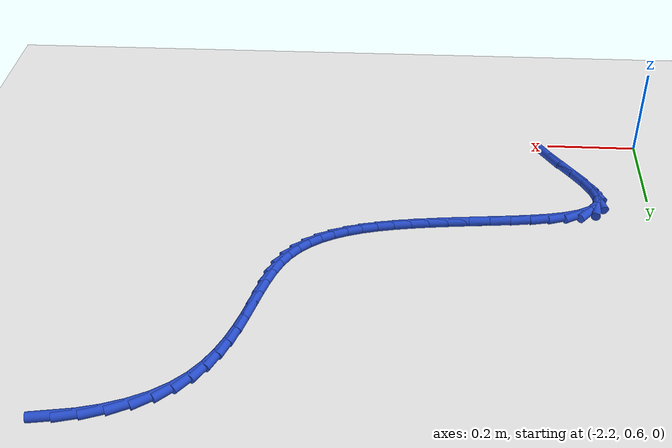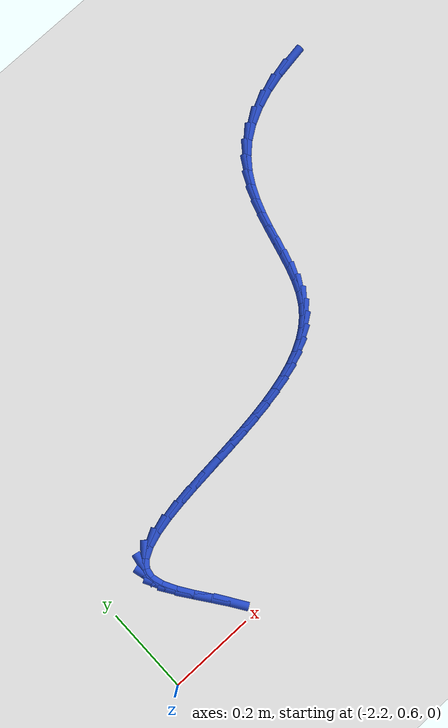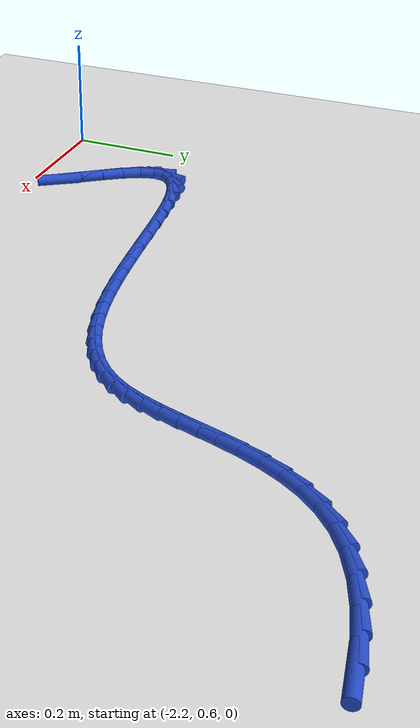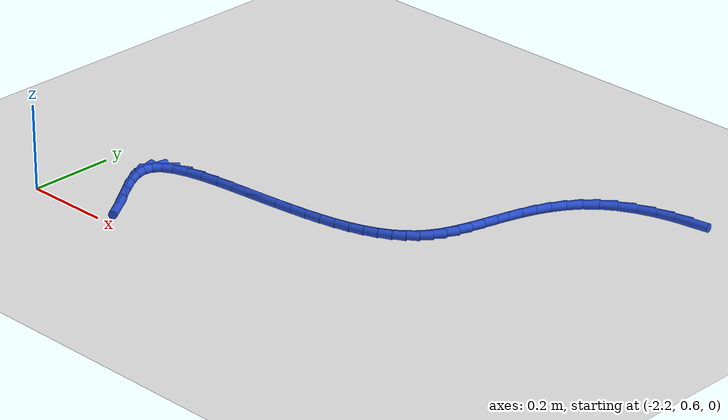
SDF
<sdf version="1.6">
 <world name="default">
  <model name="ground_plane">
   <static>1</static>
   <link name="link">
    <collision name="collision">
     <geometry><plane><normal>0 0 1</normal><size>100 100</size></plane></geometry>
     <surface><friction><ode><mu>100</mu><mu2>50</mu2></ode></friction></surface>
    </collision>
    <visual name="visual">
     <cast_shadows>0</cast_shadows>
     <geometry><plane><normal>0 0 1</normal><size>100 100</size></plane></geometry>
     <material>
      <script><uri>file://media/materials/scripts/gazebo.material</uri><name>Gazebo/WhiteGlow</name></script>
     </material>
    </visual>
   </link>
  </model>
  <model name="line">
   <link name="link_64">
    <pose>-1.0699852493082962 1.4579620796810788 0.01 0 1.57 0.15446744971172885</pose>
    <collision name="collision">
     <geometry><cylinder><radius>0.01</radius><length>0.08</length></cylinder></geometry>
    </collision>
    <visual name="visual">
     <material>
      <script><name>Gazebo/Blue</name><uri>file://media/materials/scripts/gazebo.material</uri></script>
     </material>
     <geometry><cylinder><radius>0.01</radius><length>0.08</length></cylinder></geometry>
    </visual>
   </link>
   <link name="link_65">
    <pose>-1.113085390569889 1.4512510501951963 0.01 0 1.57 0.2489012379649305</pose>
    <collision name="collision">
     <geometry><cylinder><radius>0.01</radius><length>0.08</length></cylinder></geometry>
    </collision>
    <visual name="visual">
     <material>
      <script><name>Gazebo/Blue</name><uri>file://media/materials/scripts/gazebo.material</uri></script>
     </material>
     <geometry><cylinder><radius>0.01</radius><length>0.08</length></cylinder></geometry>
    </visual>
   </link>
   <link name="link_66">
    <pose>-1.1562306329122753 1.4402847442054467 0.01 0 1.57 0.3477899901577562</pose>
    <collision name="collision">
     <geometry><cylinder><radius>0.01</radius><length>0.08</length></cylinder></geometry>
    </collision>
    <visual name="visual">
     <material>
      <script><name>Gazebo/Blue</name><uri>file://media/materials/scripts/gazebo.material</uri></script>
     </material>
     <geometry><cylinder><radius>0.01</radius><length>0.08</length></cylinder></geometry>
    </visual>
   </link>
   <link name="link_67">
    <pose>-1.1975889692672745 1.42529127091928 0.01 0 1.57 0.46201020415396077</pose>
    <collision name="collision">
     <geometry><cylinder><radius>0.01</radius><length>0.08</length></cylinder></geometry>
    </collision>
    <visual name="visual">
     <material>
      <script><name>Gazebo/Blue</name><uri>file://media/materials/scripts/gazebo.material</uri></script>
     </material>
     <geometry><cylinder><radius>0.01</radius><length>0.08</length></cylinder></geometry>
    </visual>
   </link>
   <link name="link_68">
    <pose>-1.2353283925667047 1.4064987395441475 0.01 0 1.57 0.6037212552809045</pose>
    <collision name="collision">
     <geometry><cylinder><radius>0.01</radius><length>0.08</length></cylinder></geometry>
    </collision>
    <visual name="visual">
     <material>
      <script><name>Gazebo/Blue</name><uri>file://media/materials/scripts/gazebo.material</uri></script>
     </material>
     <geometry><cylinder><radius>0.01</radius><length>0.08</length></cylinder></geometry>
    </visual>
   </link>
   <link name="link_69">
    <pose>-1.2677364559943995 1.3841496937025077 0.01 0 1.57 0.7597947664931077</pose>
    <collision name="collision">
     <geometry><cylinder><radius>0.01</radius><length>0.08</length></cylinder></geometry>
    </collision>
    <visual name="visual">
     <material>
      <script><name>Gazebo/Blue</name><uri>file://media/materials/scripts/gazebo.material</uri></script>
     </material>
     <geometry><cylinder><radius>0.01</radius><length>0.08</length></cylinder></geometry>
    </visual>
   </link>
   <link name="link_70">
    <pose>-1.294562650023387 1.3586631755536782 0.01 0 1.57 0.9069400863230939</pose>
    <collision name="collision">
     <geometry><cylinder><radius>0.01</radius><length>0.08</length></cylinder></geometry>
    </collision>
    <visual name="visual">
     <material>
      <script><name>Gazebo/Blue</name><uri>file://media/materials/scripts/gazebo.material</uri></script>
     </material>
     <geometry><cylinder><radius>0.01</radius><length>0.08</length></cylinder></geometry>
    </visual>
   </link>
   <link name="link_71">
    <pose>-1.31653502925602 1.3305763685331644 0.01 0 1.57 1.0358592865323129</pose>
    <collision name="collision">
     <geometry><cylinder><radius>0.01</radius><length>0.08</length></cylinder></geometry>
    </collision>
    <visual name="visual">
     <material>
      <script><name>Gazebo/Blue</name><uri>file://media/materials/scripts/gazebo.material</uri></script>
     </material>
     <geometry><cylinder><radius>0.01</radius><length>0.08</length></cylinder></geometry>
    </visual>
   </link>
   <link name="link_72">
    <pose>-1.3343996234628712 1.3004286262043643 0.01 0 1.57 1.1413542212084051</pose>
    <collision name="collision">
     <geometry><cylinder><radius>0.01</radius><length>0.08</length></cylinder></geometry>
    </collision>
    <visual name="visual">
     <material>
      <script><name>Gazebo/Blue</name><uri>file://media/materials/scripts/gazebo.material</uri></script>
     </material>
     <geometry><cylinder><radius>0.01</radius><length>0.08</length></cylinder></geometry>
    </visual>
   </link>
   <link name="link_73">
    <pose>-1.348902462414513 1.2687593021306762 0.01 0 1.57 1.2216515014644793</pose>
    <collision name="collision">
     <geometry><cylinder><radius>0.01</radius><length>0.08</length></cylinder></geometry>
    </collision>
    <visual name="visual">
     <material>
      <script><name>Gazebo/Blue</name><uri>file://media/materials/scripts/gazebo.material</uri></script>
     </material>
     <geometry><cylinder><radius>0.01</radius><length>0.08</length></cylinder></geometry>
    </visual>
   </link>
   <link name="link_74">
    <pose>-1.3607895758815178 1.2361077498754989 0.01 0 1.57 1.2768716550753672</pose>
    <collision name="collision">
     <geometry><cylinder><radius>0.01</radius><length>0.08</length></cylinder></geometry>
    </collision>
    <visual name="visual">
     <material>
      <script><name>Gazebo/Blue</name><uri>file://media/materials/scripts/gazebo.material</uri></script>
     </material>
     <geometry><cylinder><radius>0.01</radius><length>0.08</length></cylinder></geometry>
    </visual>
   </link>
   <link name="link_75">
    <pose>-1.3708069936344573 1.2030133230022297 0.01 0 1.57 1.307527838596577</pose>
    <collision name="collision">
     <geometry><cylinder><radius>0.01</radius><length>0.08</length></cylinder></geometry>
    </collision>
    <visual name="visual">
     <material>
      <script><name>Gazebo/Blue</name><uri>file://media/materials/scripts/gazebo.material</uri></script>
     </material>
     <geometry><cylinder><radius>0.01</radius><length>0.08</length></cylinder></geometry>
    </visual>
   </link>
   <link name="link_76">
    <pose>-1.3797007454439048 1.1700153750742688 0.01 0 1.57 1.3134792738217023</pose>
    <collision name="collision">
     <geometry><cylinder><radius>0.01</radius><length>0.08</length></cylinder></geometry>
    </collision>
    <visual name="visual">
     <material>
      <script><name>Gazebo/Blue</name><uri>file://media/materials/scripts/gazebo.material</uri></script>
     </material>
     <geometry><cylinder><radius>0.01</radius><length>0.08</length></cylinder></geometry>
    </visual>
   </link>
   <link name="link_77">
    <pose>-1.3882168610804313 1.1376532596550133 0.01 0 1.57 1.2932688464191024</pose>
    <collision name="collision">
     <geometry><cylinder><radius>0.01</radius><length>0.08</length></cylinder></geometry>
    </collision>
    <visual name="visual">
     <material>
      <script><name>Gazebo/Blue</name><uri>file://media/materials/scripts/gazebo.material</uri></script>
     </material>
     <geometry><cylinder><radius>0.01</radius><length>0.08</length></cylinder></geometry>
    </visual>
   </link>
   <link name="link_78">
    <pose>-1.3971013703146107 1.1064663303078615 0.01 0 1.57 1.2437173441911602</pose>
    <collision name="collision">
     <geometry><cylinder><radius>0.01</radius><length>0.08</length></cylinder></geometry>
    </collision>
    <visual name="visual">
     <material>
      <script><name>Gazebo/Blue</name><uri>file://media/materials/scripts/gazebo.material</uri></script>
     </material>
     <geometry><cylinder><radius>0.01</radius><length>0.08</length></cylinder></geometry>
    </visual>
   </link>
   <link name="link_79">
    <pose>-1.4071003029170144 1.0769939405962132 0.01 0 1.57 1.159888846898884</pose>
    <collision name="collision">
     <geometry><cylinder><radius>0.01</radius><length>0.08</length></cylinder></geometry>
    </collision>
    <visual name="visual">
     <material>
      <script><name>Gazebo/Blue</name><uri>file://media/materials/scripts/gazebo.material</uri></script>
     </material>
     <geometry><cylinder><radius>0.01</radius><length>0.08</length></cylinder></geometry>
    </visual>
   </link>
   <link name="link_80">
    <pose>-1.4189596886582148 1.0497754440834657 0.01 0 1.57 1.0364303493056322</pose>
    <collision name="collision">
     <geometry><cylinder><radius>0.01</radius><length>0.08</length></cylinder></geometry>
    </collision>
    <visual name="visual">
     <material>
      <script><name>Gazebo/Blue</name><uri>file://media/materials/scripts/gazebo.material</uri></script>
     </material>
     <geometry><cylinder><radius>0.01</radius><length>0.08</length></cylinder></geometry>
    </visual>
   </link>
   <link name="link_81">
    <pose>-1.4334182800691866 1.025343766039833 0.01 0 1.57 0.8872241552828292</pose>
    <collision name="collision">
     <geometry><cylinder><radius>0.01</radius><length>0.08</length></cylinder></geometry>
    </collision>
    <visual name="visual">
     <material>
      <script><name>Gazebo/Blue</name><uri>file://media/materials/scripts/gazebo.material</uri></script>
     </material>
     <geometry><cylinder><radius>0.01</radius><length>0.08</length></cylinder></geometry>
    </visual>
   </link>
   <link name="link_82">
    <pose>-1.450866455564414 1.0039240981603421 0.01 0 1.57 0.7414180585599348</pose>
    <collision name="collision">
     <geometry><cylinder><radius>0.01</radius><length>0.08</length></cylinder></geometry>
    </collision>
    <visual name="visual">
     <material>
      <script><name>Gazebo/Blue</name><uri>file://media/materials/scripts/gazebo.material</uri></script>
     </material>
     <geometry><cylinder><radius>0.01</radius><length>0.08</length></cylinder></geometry>
    </visual>
   </link>
   <link name="link_83">
    <pose>-1.4712000400719238 0.9853047721515661 0.01 0 1.57 0.6081002745427062</pose>
    <collision name="collision">
     <geometry><cylinder><radius>0.01</radius><length>0.08</length></cylinder></geometry>
    </collision>
    <visual name="visual">
     <material>
      <script><name>Gazebo/Blue</name><uri>file://media/materials/scripts/gazebo.material</uri></script>
     </material>
     <geometry><cylinder><radius>0.01</radius><length>0.08</length></cylinder></geometry>
    </visual>
   </link>
   <link name="link_84">
    <pose>-1.4942772156230748 0.9692408681591175 0.01 0 1.57 0.491713015799219</pose>
    <collision name="collision">
     <geometry><cylinder><radius>0.01</radius><length>0.08</length></cylinder></geometry>
    </collision>
    <visual name="visual">
     <material>
      <script><name>Gazebo/Blue</name><uri>file://media/materials/scripts/gazebo.material</uri></script>
     </material>
     <geometry><cylinder><radius>0.01</radius><length>0.08</length></cylinder></geometry>
    </visual>
   </link>
   <link name="link_85">
    <pose>-1.5199561642492265 0.9554874663286076 0.01 0 1.57 0.3936785784372846</pose>
    <collision name="collision">
     <geometry><cylinder><radius>0.01</radius><length>0.08</length></cylinder></geometry>
    </collision>
    <visual name="visual">
     <material>
      <script><name>Gazebo/Blue</name><uri>file://media/materials/scripts/gazebo.material</uri></script>
     </material>
     <geometry><cylinder><radius>0.01</radius><length>0.08</length></cylinder></geometry>
    </visual>
   </link>
   <link name="link_86">
    <pose>-1.5480950679817396 0.9437996468056485 0.01 0 1.57 0.313299706593923</pose>
    <collision name="collision">
     <geometry><cylinder><radius>0.01</radius><length>0.08</length></cylinder></geometry>
    </collision>
    <visual name="visual">
     <material>
      <script><name>Gazebo/Blue</name><uri>file://media/materials/scripts/gazebo.material</uri></script>
     </material>
     <geometry><cylinder><radius>0.01</radius><length>0.08</length></cylinder></geometry>
    </visual>
   </link>
   <link name="link_87">
    <pose>-1.5785521088519718 0.9339324897358522 0.01 0 1.57 0.2488129566157246</pose>
    <collision name="collision">
     <geometry><cylinder><radius>0.01</radius><length>0.08</length></cylinder></geometry>
    </collision>
    <visual name="visual">
     <material>
      <script><name>Gazebo/Blue</name><uri>file://media/materials/scripts/gazebo.material</uri></script>
     </material>
     <geometry><cylinder><radius>0.01</radius><length>0.08</length></cylinder></geometry>
    </visual>
   </link>
   <link name="link_88">
    <pose>-1.6111854688912837 0.9256410752648303 0.01 0 1.57 0.19814485238803176</pose>
    <collision name="collision">
     <geometry><cylinder><radius>0.01</radius><length>0.08</length></cylinder></geometry>
    </collision>
    <visual name="visual">
     <material>
      <script><name>Gazebo/Blue</name><uri>file://media/materials/scripts/gazebo.material</uri></script>
     </material>
     <geometry><cylinder><radius>0.01</radius><length>0.08</length></cylinder></geometry>
    </visual>
   </link>
   <link name="link_89">
    <pose>-1.645853330131034 0.9186804835381946 0.01 0 1.57 0.1593219658577773</pose>
    <collision name="collision">
     <geometry><cylinder><radius>0.01</radius><length>0.08</length></cylinder></geometry>
    </collision>
    <visual name="visual">
     <material>
      <script><name>Gazebo/Blue</name><uri>file://media/materials/scripts/gazebo.material</uri></script>
     </material>
     <geometry><cylinder><radius>0.01</radius><length>0.08</length></cylinder></geometry>
    </visual>
   </link>
   <link name="link_90">
    <pose>-1.6824138746025827 0.9128057947015573 0.01 0 1.57 0.13064088166499738</pose>
    <collision name="collision">
     <geometry><cylinder><radius>0.01</radius><length>0.08</length></cylinder></geometry>
    </collision>
    <visual name="visual">
     <material>
      <script><name>Gazebo/Blue</name><uri>file://media/materials/scripts/gazebo.material</uri></script>
     </material>
     <geometry><cylinder><radius>0.01</radius><length>0.08</length></cylinder></geometry>
    </visual>
   </link>
   <link name="link_91">
    <pose>-1.7207252843372898 0.9077720889005301 0.01 0 1.57 0.1107076073515535</pose>
    <collision name="collision">
     <geometry><cylinder><radius>0.01</radius><length>0.08</length></cylinder></geometry>
    </collision>
    <visual name="visual">
     <material>
      <script><name>Gazebo/Blue</name><uri>file://media/materials/scripts/gazebo.material</uri></script>
     </material>
     <geometry><cylinder><radius>0.01</radius><length>0.08</length></cylinder></geometry>
    </visual>
   </link>
   <link name="link_92">
    <pose>-1.7606457413665129 0.9033344462807247 0.01 0 1.57 0.09841808079191001</pose>
    <collision name="collision">
     <geometry><cylinder><radius>0.01</radius><length>0.08</length></cylinder></geometry>
    </collision>
    <visual name="visual">
     <material>
      <script><name>Gazebo/Blue</name><uri>file://media/materials/scripts/gazebo.material</uri></script>
     </material>
     <geometry><cylinder><radius>0.01</radius><length>0.08</length></cylinder></geometry>
    </visual>
   </link>
   <link name="link_93">
    <pose>-1.8020334277216128 0.8992479469877529 0.01 0 1.57 0.09291796974430584</pose>
    <collision name="collision">
     <geometry><cylinder><radius>0.01</radius><length>0.08</length></cylinder></geometry>
    </collision>
    <visual name="visual">
     <material>
      <script><name>Gazebo/Blue</name><uri>file://media/materials/scripts/gazebo.material</uri></script>
     </material>
     <geometry><cylinder><radius>0.01</radius><length>0.08</length></cylinder></geometry>
    </visual>
   </link>
   <link name="link_94">
    <pose>-1.8447465254339495 0.8952676711672274 0.01 0 1.57 0.09403137192662882</pose>
    <collision name="collision">
     <geometry><cylinder><radius>0.01</radius><length>0.08</length></cylinder></geometry>
    </collision>
    <visual name="visual">
     <material>
      <script><name>Gazebo/Blue</name><uri>file://media/materials/scripts/gazebo.material</uri></script>
     </material>
     <geometry><cylinder><radius>0.01</radius><length>0.08</length></cylinder></geometry>
    </visual>
   </link>
   <link name="link_95">
    <pose>-1.8885786720292415 0.8911338835900193 0.01 0 1.57 0.10836040890383389</pose>
    <collision name="collision">
     <geometry><cylinder><radius>0.01</radius><length>0.08</length></cylinder></geometry>
    </collision>
    <visual name="visual">
     <material>
      <script><name>Gazebo/Blue</name><uri>file://media/materials/scripts/gazebo.material</uri></script>
     </material>
     <geometry><cylinder><radius>0.01</radius><length>0.08</length></cylinder></geometry>
    </visual>
   </link>
   <link name="link_96">
    <pose>-1.9323758904117616 0.8863693360785856 0.01 0 1.57 0.14315758118894606</pose>
    <collision name="collision">
     <geometry><cylinder><radius>0.01</radius><length>0.08</length></cylinder></geometry>
    </collision>
    <visual name="visual">
     <material>
      <script><name>Gazebo/Blue</name><uri>file://media/materials/scripts/gazebo.material</uri></script>
     </material>
     <geometry><cylinder><radius>0.01</radius><length>0.08</length></cylinder></geometry>
    </visual>
   </link>
   <link name="link_97">
    <pose>-1.9742639068340633 0.8803314454711988 0.01 0 1.57 0.2059805071903785</pose>
    <collision name="collision">
     <geometry><cylinder><radius>0.01</radius><length>0.08</length></cylinder></geometry>
    </collision>
    <visual name="visual">
     <material>
      <script><name>Gazebo/Blue</name><uri>file://media/materials/scripts/gazebo.material</uri></script>
     </material>
     <geometry><cylinder><radius>0.01</radius><length>0.08</length></cylinder></geometry>
    </visual>
   </link>
   <link name="link_98">
    <pose>-2.012350441530196 0.872373495552372 0.01 0 1.57 0.3141502019267796</pose>
    <collision name="collision">
     <geometry><cylinder><radius>0.01</radius><length>0.08</length></cylinder></geometry>
    </collision>
    <visual name="visual">
     <material>
      <script><name>Gazebo/Blue</name><uri>file://media/materials/scripts/gazebo.material</uri></script>
     </material>
     <geometry><cylinder><radius>0.01</radius><length>0.08</length></cylinder></geometry>
    </visual>
   </link>
   <link name="link_99">
    <pose>-2.0447432147342135 0.8618487701066188 0.01 0 1.57 0.5057636779801012</pose>
    <collision name="collision">
     <geometry><cylinder><radius>0.01</radius><length>0.08</length></cylinder></geometry>
    </collision>
    <visual name="visual">
     <material>
      <script><name>Gazebo/Blue</name><uri>file://media/materials/scripts/gazebo.material</uri></script>
     </material>
     <geometry><cylinder><radius>0.01</radius><length>0.08</length></cylinder></geometry>
    </visual>
   </link>
   <link name="link_100">
    <pose>-2.069549946680167 0.8481105529184532 0.01 0 1.57 0.854230409219945</pose>
    <collision name="collision">
     <geometry><cylinder><radius>0.01</radius><length>0.08</length></cylinder></geometry>
    </collision>
    <visual name="visual">
     <material>
      <script><name>Gazebo/Blue</name><uri>file://media/materials/scripts/gazebo.material</uri></script>
     </material>
     <geometry><cylinder><radius>0.01</radius><length>0.08</length></cylinder></geometry>
    </visual>
   </link>
   <link name="link_101">
    <pose>-2.0848783576021064 0.8305121277723879 0.01 0 1.57 1.3914412187262941</pose>
    <collision name="collision">
     <geometry><cylinder><radius>0.01</radius><length>0.08</length></cylinder></geometry>
    </collision>
    <visual name="visual">
     <material>
      <script><name>Gazebo/Blue</name><uri>file://media/materials/scripts/gazebo.material</uri></script>
     </material>
     <geometry><cylinder><radius>0.01</radius><length>0.08</length></cylinder></geometry>
    </visual>
   </link>
   <link name="link_102">
    <pose>-2.0888830385475776 0.808423839256227 0.01 0 1.57 -1.3045717148422913</pose>
    <collision name="collision">
     <geometry><cylinder><radius>0.01</radius><length>0.08</length></cylinder></geometry>
    </collision>
    <visual name="visual">
     <material>
      <script><name>Gazebo/Blue</name><uri>file://media/materials/scripts/gazebo.material</uri></script>
     </material>
     <geometry><cylinder><radius>0.01</radius><length>0.08</length></cylinder></geometry>
    </visual>
   </link>
   <link name="link_103">
    <pose>-2.081655821997632 0.7819211806966233 0.01 0 1.57 -1.085142881651384</pose>
    <collision name="collision">
     <geometry><cylinder><radius>0.01</radius><length>0.08</length></cylinder></geometry>
    </collision>
    <visual name="visual">
     <material>
      <script><name>Gazebo/Blue</name><uri>file://media/materials/scripts/gazebo.material</uri></script>
     </material>
     <geometry><cylinder><radius>0.01</radius><length>0.08</length></cylinder></geometry>
    </visual>
   </link>
   <link name="link_104">
    <pose>-2.065873798174008 0.7520206697055395 0.01 0 1.57 -0.9827444922781499</pose>
    <collision name="collision">
     <geometry><cylinder><radius>0.01</radius><length>0.08</length></cylinder></geometry>
    </collision>
    <visual name="visual">
     <material>
      <script><name>Gazebo/Blue</name><uri>file://media/materials/scripts/gazebo.material</uri></script>
     </material>
     <geometry><cylinder><radius>0.01</radius><length>0.08</length></cylinder></geometry>
    </visual>
   </link>
   <link name="link_105">
    <pose>-2.0443939237592326 0.7198042946234674 0.01 0 1.57 -0.9421308006116622</pose>
    <collision name="collision">
     <geometry><cylinder><radius>0.01</radius><length>0.08</length></cylinder></geometry>
    </collision>
    <visual name="visual">
     <material>
      <script><name>Gazebo/Blue</name><uri>file://media/materials/scripts/gazebo.material</uri></script>
     </material>
     <geometry><cylinder><radius>0.01</radius><length>0.08</length></cylinder></geometry>
    </visual>
   </link>
   <link name="link_106">
    <pose>-2.0200731554358327 0.6863540437908987 0.01 0 1.57 -0.9445978820506646</pose>
    <collision name="collision">
     <geometry><cylinder><radius>0.01</radius><length>0.08</length></cylinder></geometry>
    </collision>
    <visual name="visual">
     <material>
      <script><name>Gazebo/Blue</name><uri>file://media/materials/scripts/gazebo.material</uri></script>
     </material>
     <geometry><cylinder><radius>0.01</radius><length>0.08</length></cylinder></geometry>
    </visual>
   </link>
   <link name="link_107">
    <pose>-1.9957684498863375 0.6527519055483251 0.01 0 1.57 -0.9902397822977125</pose>
    <collision name="collision">
     <geometry><cylinder><radius>0.01</radius><length>0.08</length></cylinder></geometry>
    </collision>
    <visual name="visual">
     <material>
      <script><name>Gazebo/Blue</name><uri>file://media/materials/scripts/gazebo.material</uri></script>
     </material>
     <geometry><cylinder><radius>0.01</radius><length>0.08</length></cylinder></geometry>
    </visual>
   </link>
  </model>
 </world>
</sdf>
